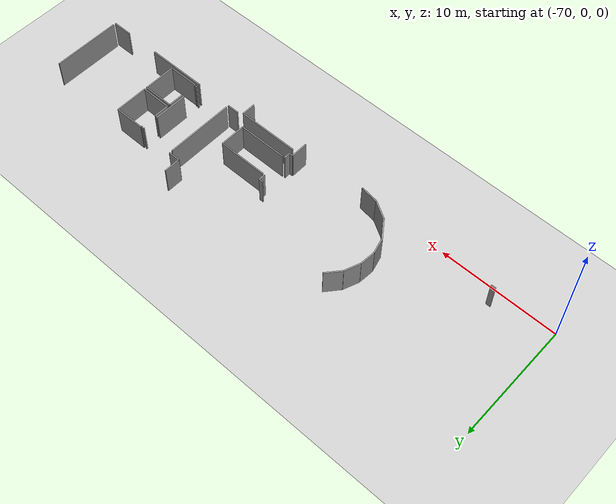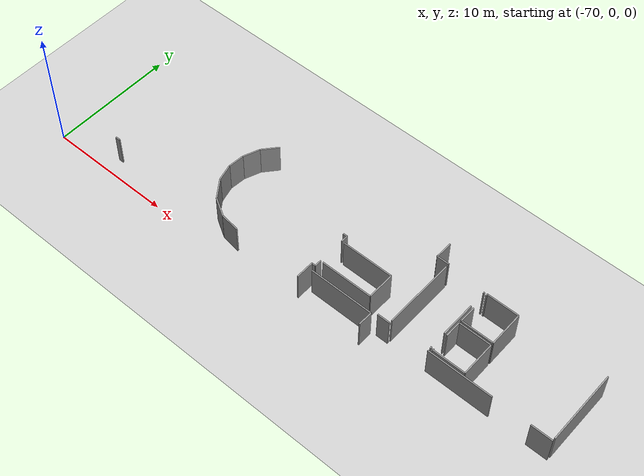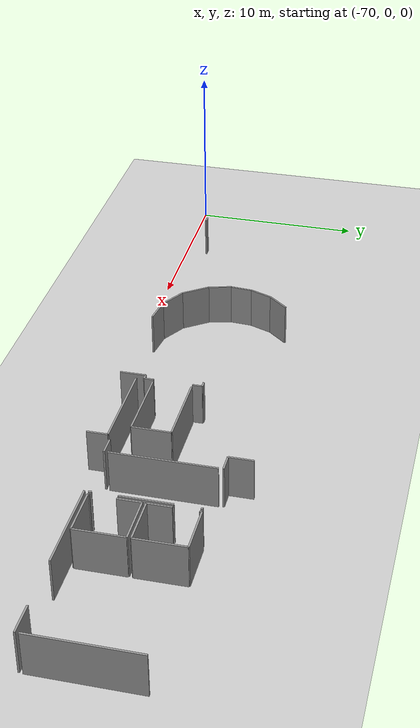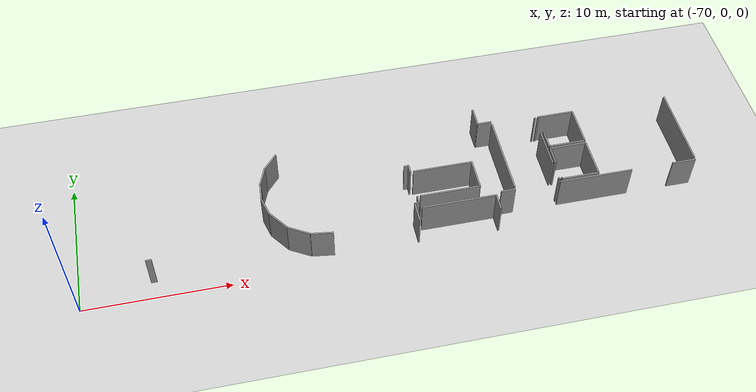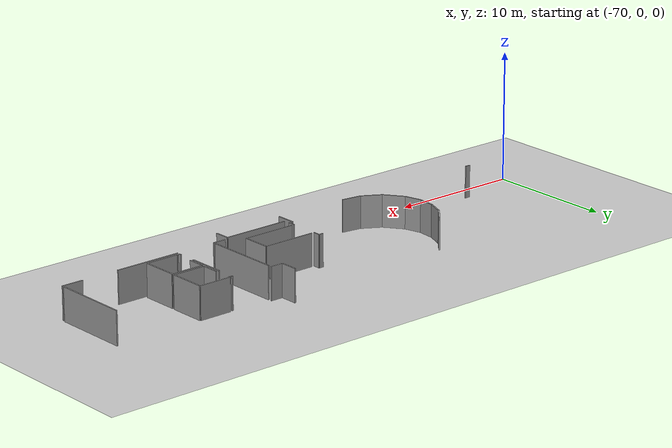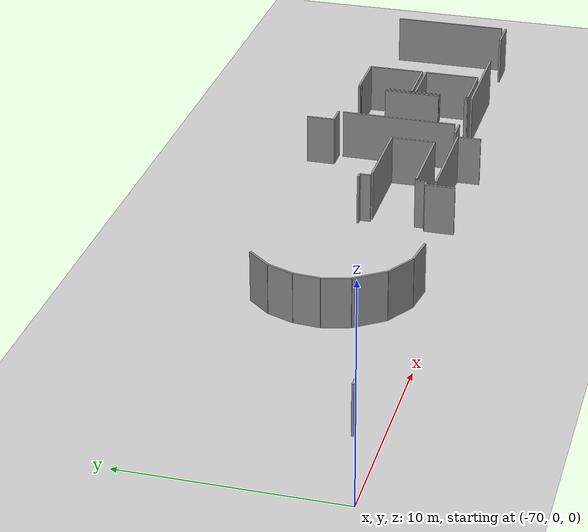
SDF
<sdf version="1.6">
 <world name="default">
  <model name="ground_plane">
   <static>1</static>
   <link name="link">
    <collision name="collision">
     <geometry><plane><normal>0 0 1</normal><size>100 100</size></plane></geometry>
     <surface><friction><ode><mu>100</mu><mu2>50</mu2></ode></friction></surface>
    </collision>
    <visual name="visual">
     <cast_shadows>0</cast_shadows>
     <geometry><plane><normal>0 0 1</normal><size>100 100</size></plane></geometry>
     <material>
      <script><uri>file://media/materials/scripts/gazebo.material</uri><name>Gazebo/Grey</name></script>
     </material>
    </visual>
   </link>
  </model>
  <model name="0510032217_A-40">
   <static>1</static>
   <link name="Wall_44">
    <collision name="Wall_44_Collision">
     <geometry><box><size>0.986701857679 0.1 2.5</size></box></geometry>
     <pose>0.49335092884 0 1.25 0 0 0</pose>
    </collision>
    <visual name="Wall_44_Visual">
     <pose>0.49335092884 0 1.25 0 0 0</pose>
     <geometry><box><size>0.986701857679 0.1 2.5</size></box></geometry>
     <material>
      <script><uri>file://media/materials/scripts/gazebo.material</uri><name>Gazebo/Grey</name></script>
      <ambient>1 1 1 1</ambient>
     </material>
    </visual>
    <pose>36.4605750685 -44.8070246675 0 0 0 3.14159265359</pose>
   </link>
   <link name="Wall_45">
    <collision name="Wall_45_Collision">
     <geometry><box><size>1.37854024972 0.1 2.5</size></box></geometry>
     <pose>0.68927012486 0 1.25 0 0 0</pose>
    </collision>
    <visual name="Wall_45_Visual">
     <pose>0.68927012486 0 1.25 0 0 0</pose>
     <geometry><box><size>1.37854024972 0.1 2.5</size></box></geometry>
     <material>
      <script><uri>file://media/materials/scripts/gazebo.material</uri><name>Gazebo/Grey</name></script>
      <ambient>1 1 1 1</ambient>
     </material>
    </visual>
    <pose>35.4738732108 -44.8070246675 0 0 0 1.57079632679</pose>
   </link>
   <link name="Wall_362">
    <collision name="Wall_362_Collision">
     <geometry><box><size>5.81147384252 0.1 2.5</size></box></geometry>
     <pose>2.90573692126 0 1.25 0 0 0</pose>
    </collision>
    <visual name="Wall_362_Visual">
     <pose>2.90573692126 0 1.25 0 0 0</pose>
     <geometry><box><size>5.81147384252 0.1 2.5</size></box></geometry>
     <material>
      <script><uri>file://media/materials/scripts/gazebo.material</uri><name>Gazebo/Grey</name></script>
      <ambient>1 1 1 1</ambient>
     </material>
    </visual>
    <pose>49.33718658 -45.0391077048 0 0 0 -1.56913690344</pose>
   </link>
   <link name="Wall_363">
    <collision name="Wall_363_Collision">
     <geometry><box><size>5.78875241092 0.1 2.5</size></box></geometry>
     <pose>2.89437620546 0 1.25 0 0 0</pose>
    </collision>
    <visual name="Wall_363_Visual">
     <pose>2.89437620546 0 1.25 0 0 0</pose>
     <geometry><box><size>5.78875241092 0.1 2.5</size></box></geometry>
     <material>
      <script><uri>file://media/materials/scripts/gazebo.material</uri><name>Gazebo/Grey</name></script>
      <ambient>1 1 1 1</ambient>
     </material>
    </visual>
    <pose>36.4547380977 -50.8424525429 0 0 0 1.57079632679</pose>
   </link>
   <link name="Wall_364">
    <collision name="Wall_364_Collision">
     <geometry><box><size>0.115978073292 0.1 2.5</size></box></geometry>
     <pose>0.057989036646 0 1.25 0 0 0</pose>
    </collision>
    <visual name="Wall_364_Visual">
     <pose>0.057989036646 0 1.25 0 0 0</pose>
     <geometry><box><size>0.115978073292 0.1 2.5</size></box></geometry>
     <material>
      <script><uri>file://media/materials/scripts/gazebo.material</uri><name>Gazebo/Grey</name></script>
      <ambient>1 1 1 1</ambient>
     </material>
    </visual>
    <pose>39.6164729469 -45.053700132 0 0 0 -1.57079632679</pose>
   </link>
   <link name="Wall_365">
    <collision name="Wall_365_Collision">
     <geometry><box><size>2.82940818191 0.1 2.5</size></box></geometry>
     <pose>1.41470409096 0 1.25 0 0 0</pose>
    </collision>
    <visual name="Wall_365_Visual">
     <pose>1.41470409096 0 1.25 0 0 0</pose>
     <geometry><box><size>2.82940818191 0.1 2.5</size></box></geometry>
     <material>
      <script><uri>file://media/materials/scripts/gazebo.material</uri><name>Gazebo/Grey</name></script>
      <ambient>1 1 1 1</ambient>
     </material>
    </visual>
    <pose>39.6164729469 -46.5046949548 0 0 0 -1.57079632679</pose>
   </link>
   <link name="Wall_366">
    <collision name="Wall_366_Collision">
     <geometry><box><size>0.167678808052 0.1 2.5</size></box></geometry>
     <pose>0.0838394040262 0 1.25 0 0 0</pose>
    </collision>
    <visual name="Wall_366_Visual">
     <pose>0.0838394040262 0 1.25 0 0 0</pose>
     <geometry><box><size>0.167678808052 0.1 2.5</size></box></geometry>
     <material>
      <script><uri>file://media/materials/scripts/gazebo.material</uri><name>Gazebo/Grey</name></script>
      <ambient>1 1 1 1</ambient>
     </material>
    </visual>
    <pose>39.6164729469 -50.6769871079 0 0 0 -1.40813582539</pose>
   </link>
   <link name="Wall_367">
    <collision name="Wall_367_Collision">
     <geometry><box><size>2.57549994924 0.1 2.5</size></box></geometry>
     <pose>1.28774997462 0 1.25 0 0 0</pose>
    </collision>
    <visual name="Wall_367_Visual">
     <pose>1.28774997462 0 1.25 0 0 0</pose>
     <geometry><box><size>2.57549994924 0.1 2.5</size></box></geometry>
     <material>
      <script><uri>file://media/materials/scripts/gazebo.material</uri><name>Gazebo/Grey</name></script>
      <ambient>1 1 1 1</ambient>
     </material>
    </visual>
    <pose>42.4169500558 -47.8395848137 0 0 0 3.14159265359</pose>
   </link>
   <link name="Wall_368">
    <collision name="Wall_368_Collision">
     <geometry><box><size>1.31319155416 0.1 2.5</size></box></geometry>
     <pose>0.656595777078 0 1.25 0 0 0</pose>
    </collision>
    <visual name="Wall_368_Visual">
     <pose>0.656595777078 0 1.25 0 0 0</pose>
     <geometry><box><size>1.31319155416 0.1 2.5</size></box></geometry>
     <material>
      <script><uri>file://media/materials/scripts/gazebo.material</uri><name>Gazebo/Grey</name></script>
      <ambient>1 1 1 1</ambient>
     </material>
    </visual>
    <pose>39.8414501066 -47.8395848137 0 0 0 1.57079632679</pose>
   </link>
   <link name="Wall_369">
    <collision name="Wall_369_Collision">
     <geometry><box><size>0.12333773221 0.1 2.5</size></box></geometry>
     <pose>0.061668866105 0 1.25 0 0 0</pose>
    </collision>
    <visual name="Wall_369_Visual">
     <pose>0.061668866105 0 1.25 0 0 0</pose>
     <geometry><box><size>0.12333773221 0.1 2.5</size></box></geometry>
     <material>
      <script><uri>file://media/materials/scripts/gazebo.material</uri><name>Gazebo/Grey</name></script>
      <ambient>1 1 1 1</ambient>
     </material>
    </visual>
    <pose>39.8414501066 -45.1770378642 0 0 0 1.57079632679</pose>
   </link>
   <link name="Wall_370">
    <collision name="Wall_370_Collision">
     <geometry><box><size>2.56103441275 0.1 2.5</size></box></geometry>
     <pose>1.28051720637 0 1.25 0 0 0</pose>
    </collision>
    <visual name="Wall_370_Visual">
     <pose>1.28051720637 0 1.25 0 0 0</pose>
     <geometry><box><size>2.56103441275 0.1 2.5</size></box></geometry>
     <material>
      <script><uri>file://media/materials/scripts/gazebo.material</uri><name>Gazebo/Grey</name></script>
      <ambient>1 1 1 1</ambient>
     </material>
    </visual>
    <pose>39.8414501066 -45.053700132 0 0 0 0.0</pose>
   </link>
   <link name="Wall_371">
    <collision name="Wall_371_Collision">
     <geometry><box><size>2.78592223721 0.1 2.5</size></box></geometry>
     <pose>1.39296111861 0 1.25 0 0 0</pose>
    </collision>
    <visual name="Wall_371_Visual">
     <pose>1.39296111861 0 1.25 0 0 0</pose>
     <geometry><box><size>2.78592223721 0.1 2.5</size></box></geometry>
     <material>
      <script><uri>file://media/materials/scripts/gazebo.material</uri><name>Gazebo/Grey</name></script>
      <ambient>1 1 1 1</ambient>
     </material>
    </visual>
    <pose>42.4024845193 -45.053700132 0 0 0 -1.56560393438</pose>
   </link>
   <link name="Wall_372">
    <collision name="Wall_372_Collision">
     <geometry><box><size>2.59034615775 0.1 2.5</size></box></geometry>
     <pose>1.29517307888 0 1.25 0 0 0</pose>
    </collision>
    <visual name="Wall_372_Visual">
     <pose>1.29517307888 0 1.25 0 0 0</pose>
     <geometry><box><size>2.59034615775 0.1 2.5</size></box></geometry>
     <material>
      <script><uri>file://media/materials/scripts/gazebo.material</uri><name>Gazebo/Grey</name></script>
      <ambient>1 1 1 1</ambient>
     </material>
    </visual>
    <pose>42.42151812 -50.8155517206 0 0 0 3.14159265359</pose>
   </link>
   <link name="Wall_373">
    <collision name="Wall_373_Collision">
     <geometry><box><size>0.104938584915 0.1 2.5</size></box></geometry>
     <pose>0.0524692924576 0 1.25 0 0 0</pose>
    </collision>
    <visual name="Wall_373_Visual">
     <pose>0.0524692924576 0 1.25 0 0 0</pose>
     <geometry><box><size>0.104938584915 0.1 2.5</size></box></geometry>
     <material>
      <script><uri>file://media/materials/scripts/gazebo.material</uri><name>Gazebo/Grey</name></script>
      <ambient>1 1 1 1</ambient>
     </material>
    </visual>
    <pose>39.8311719622 -50.8155517206 0 0 0 1.57079632679</pose>
   </link>
   <link name="Wall_374">
    <collision name="Wall_374_Collision">
     <geometry><box><size>1.30227895645 0.1 2.5</size></box></geometry>
     <pose>0.651139478226 0 1.25 0 0 0</pose>
    </collision>
    <visual name="Wall_374_Visual">
     <pose>0.651139478226 0 1.25 0 0 0</pose>
     <geometry><box><size>1.30227895645 0.1 2.5</size></box></geometry>
     <material>
      <script><uri>file://media/materials/scripts/gazebo.material</uri><name>Gazebo/Grey</name></script>
      <ambient>1 1 1 1</ambient>
     </material>
    </visual>
    <pose>39.8311719622 -49.3559283321 0 0 0 1.57079632679</pose>
   </link>
   <link name="Wall_375">
    <collision name="Wall_375_Collision">
     <geometry><box><size>2.57600751193 0.1 2.5</size></box></geometry>
     <pose>1.28800375596 0 1.25 0 0 0</pose>
    </collision>
    <visual name="Wall_375_Visual">
     <pose>1.28800375596 0 1.25 0 0 0</pose>
     <geometry><box><size>2.57600751193 0.1 2.5</size></box></geometry>
     <material>
      <script><uri>file://media/materials/scripts/gazebo.material</uri><name>Gazebo/Grey</name></script>
      <ambient>1 1 1 1</ambient>
     </material>
    </visual>
    <pose>39.8311719622 -48.0536493757 0 0 0 0.0</pose>
   </link>
   <link name="Wall_376">
    <collision name="Wall_376_Collision">
     <geometry><box><size>2.76193956483 0.1 2.5</size></box></geometry>
     <pose>1.38096978241 0 1.25 0 0 0</pose>
    </collision>
    <visual name="Wall_376_Visual">
     <pose>1.38096978241 0 1.25 0 0 0</pose>
     <geometry><box><size>2.76193956483 0.1 2.5</size></box></geometry>
     <material>
      <script><uri>file://media/materials/scripts/gazebo.material</uri><name>Gazebo/Grey</name></script>
      <ambient>1 1 1 1</ambient>
     </material>
    </visual>
    <pose>42.4071794742 -48.0536493757 0 0 0 -1.56560479023</pose>
   </link>
   <link name="Wall_380">
    <collision name="Wall_380_Collision">
     <geometry><box><size>1.53276275442 0.1 2.5</size></box></geometry>
     <pose>0.766381377212 0 1.25 0 0 0</pose>
    </collision>
    <visual name="Wall_380_Visual">
     <pose>0.766381377212 0 1.25 0 0 0</pose>
     <geometry><box><size>1.53276275442 0.1 2.5</size></box></geometry>
     <material>
      <script><uri>file://media/materials/scripts/gazebo.material</uri><name>Gazebo/Grey</name></script>
      <ambient>1 1 1 1</ambient>
     </material>
    </visual>
    <pose>23.7704928434 -52.0953710283 0 0 0 3.00506943648</pose>
   </link>
   <link name="Wall_381">
    <collision name="Wall_381_Collision">
     <geometry><box><size>1.62688091041 0.1 2.5</size></box></geometry>
     <pose>0.813440455203 0 1.25 0 0 0</pose>
    </collision>
    <visual name="Wall_381_Visual">
     <pose>0.813440455203 0 1.25 0 0 0</pose>
     <geometry><box><size>1.62688091041 0.1 2.5</size></box></geometry>
     <material>
      <script><uri>file://media/materials/scripts/gazebo.material</uri><name>Gazebo/Grey</name></script>
      <ambient>1 1 1 1</ambient>
     </material>
    </visual>
    <pose>22.2519921835 -51.8867627652 0 0 0 2.60910535449</pose>
   </link>
   <link name="Wall_382">
    <collision name="Wall_382_Collision">
     <geometry><box><size>1.70897439656 0.1 2.5</size></box></geometry>
     <pose>0.854487198282 0 1.25 0 0 0</pose>
    </collision>
    <visual name="Wall_382_Visual">
     <pose>0.854487198282 0 1.25 0 0 0</pose>
     <geometry><box><size>1.70897439656 0.1 2.5</size></box></geometry>
     <material>
      <script><uri>file://media/materials/scripts/gazebo.material</uri><name>Gazebo/Grey</name></script>
      <ambient>1 1 1 1</ambient>
     </material>
    </visual>
    <pose>20.8503578317 -51.0608313877 0 0 0 2.19669937129</pose>
   </link>
   <link name="Wall_383">
    <collision name="Wall_383_Collision">
     <geometry><box><size>1.34572605802 0.1 2.5</size></box></geometry>
     <pose>0.67286302901 0 1.25 0 0 0</pose>
    </collision>
    <visual name="Wall_383_Visual">
     <pose>0.67286302901 0 1.25 0 0 0</pose>
     <geometry><box><size>1.34572605802 0.1 2.5</size></box></geometry>
     <material>
      <script><uri>file://media/materials/scripts/gazebo.material</uri><name>Gazebo/Grey</name></script>
      <ambient>1 1 1 1</ambient>
     </material>
    </visual>
    <pose>19.8491904375 -49.6758197137 0 0 0 1.82782728346</pose>
   </link>
   <link name="Wall_384">
    <collision name="Wall_384_Collision">
     <geometry><box><size>1.28878949184 0.1 2.5</size></box></geometry>
     <pose>0.64439474592 0 1.25 0 0 0</pose>
    </collision>
    <visual name="Wall_384_Visual">
     <pose>0.64439474592 0 1.25 0 0 0</pose>
     <geometry><box><size>1.28878949184 0.1 2.5</size></box></geometry>
     <material>
      <script><uri>file://media/materials/scripts/gazebo.material</uri><name>Gazebo/Grey</name></script>
      <ambient>1 1 1 1</ambient>
     </material>
    </visual>
    <pose>19.5070931885 -48.3743021013 0 0 0 1.4930352116</pose>
   </link>
   <link name="Wall_385">
    <collision name="Wall_385_Collision">
     <geometry><box><size>1.36812766502 0.1 2.5</size></box></geometry>
     <pose>0.684063832512 0 1.25 0 0 0</pose>
    </collision>
    <visual name="Wall_385_Visual">
     <pose>0.684063832512 0 1.25 0 0 0</pose>
     <geometry><box><size>1.36812766502 0.1 2.5</size></box></geometry>
     <material>
      <script><uri>file://media/materials/scripts/gazebo.material</uri><name>Gazebo/Grey</name></script>
      <ambient>1 1 1 1</ambient>
     </material>
    </visual>
    <pose>19.6072099279 -47.0894071668 0 0 0 1.20277681314</pose>
   </link>
   <link name="Wall_386">
    <collision name="Wall_386_Collision">
     <geometry><box><size>1.44428975668 0.1 2.5</size></box></geometry>
     <pose>0.722144878338 0 1.25 0 0 0</pose>
    </collision>
    <visual name="Wall_386_Visual">
     <pose>0.722144878338 0 1.25 0 0 0</pose>
     <geometry><box><size>1.44428975668 0.1 2.5</size></box></geometry>
     <material>
      <script><uri>file://media/materials/scripts/gazebo.material</uri><name>Gazebo/Grey</name></script>
      <ambient>1 1 1 1</ambient>
     </material>
    </visual>
    <pose>20.0994188407 -45.8128870165 0 0 0 0.867182544015</pose>
   </link>
   <link name="Wall_393">
    <collision name="Wall_393_Collision">
     <geometry><box><size>0.341589686326 0.1 2.5</size></box></geometry>
     <pose>0.170794843163 0 1.25 0 0 0</pose>
    </collision>
    <visual name="Wall_393_Visual">
     <pose>0.170794843163 0 1.25 0 0 0</pose>
     <geometry><box><size>0.341589686326 0.1 2.5</size></box></geometry>
     <material>
      <script><uri>file://media/materials/scripts/gazebo.material</uri><name>Gazebo/Grey</name></script>
      <ambient>1 1 1 1</ambient>
     </material>
    </visual>
    <pose>29.4856486651 -47.5632169323 0 0 0 0.0</pose>
   </link>
   <link name="Wall_394">
    <collision name="Wall_394_Collision">
     <geometry><box><size>0.555146685616 0.1 2.5</size></box></geometry>
     <pose>0.277573342808 0 1.25 0 0 0</pose>
    </collision>
    <visual name="Wall_394_Visual">
     <pose>0.277573342808 0 1.25 0 0 0</pose>
     <geometry><box><size>0.555146685616 0.1 2.5</size></box></geometry>
     <material>
      <script><uri>file://media/materials/scripts/gazebo.material</uri><name>Gazebo/Grey</name></script>
      <ambient>1 1 1 1</ambient>
     </material>
    </visual>
    <pose>29.8272383514 -47.5632169323 0 0 0 -1.57079632679</pose>
   </link>
   <link name="Wall_395">
    <collision name="Wall_395_Collision">
     <geometry><box><size>0.550959293473 0.1 2.5</size></box></geometry>
     <pose>0.275479646736 0 1.25 0 0 0</pose>
    </collision>
    <visual name="Wall_395_Visual">
     <pose>0.275479646736 0 1.25 0 0 0</pose>
     <geometry><box><size>0.550959293473 0.1 2.5</size></box></geometry>
     <material>
      <script><uri>file://media/materials/scripts/gazebo.material</uri><name>Gazebo/Grey</name></script>
      <ambient>1 1 1 1</ambient>
     </material>
    </visual>
    <pose>29.8272383514 -50.2845142625 0 0 0 -1.57079632679</pose>
   </link>
   <link name="Wall_396">
    <collision name="Wall_396_Collision">
     <geometry><box><size>0.309105674551 0.1 2.5</size></box></geometry>
     <pose>0.154552837275 0 1.25 0 0 0</pose>
    </collision>
    <visual name="Wall_396_Visual">
     <pose>0.154552837275 0 1.25 0 0 0</pose>
     <geometry><box><size>0.309105674551 0.1 2.5</size></box></geometry>
     <material>
      <script><uri>file://media/materials/scripts/gazebo.material</uri><name>Gazebo/Grey</name></script>
      <ambient>1 1 1 1</ambient>
     </material>
    </visual>
    <pose>29.8272383514 -50.835473556 0 0 0 3.14159265359</pose>
   </link>
   <link name="Wall_397">
    <collision name="Wall_397_Collision">
     <geometry><box><size>1.45139107601 0.1 2.5</size></box></geometry>
     <pose>0.725695538003 0 1.25 0 0 0</pose>
    </collision>
    <visual name="Wall_397_Visual">
     <pose>0.725695538003 0 1.25 0 0 0</pose>
     <geometry><box><size>1.45139107601 0.1 2.5</size></box></geometry>
     <material>
      <script><uri>file://media/materials/scripts/gazebo.material</uri><name>Gazebo/Grey</name></script>
      <ambient>1 1 1 1</ambient>
     </material>
    </visual>
    <pose>29.5181326769 -50.835473556 0 0 0 -1.56616268274</pose>
   </link>
   <link name="Wall_398">
    <collision name="Wall_398_Collision">
     <geometry><box><size>4.14272662674 0.1 2.5</size></box></geometry>
     <pose>2.07136331337 0 1.25 0 0 0</pose>
    </collision>
    <visual name="Wall_398_Visual">
     <pose>2.07136331337 0 1.25 0 0 0</pose>
     <geometry><box><size>4.14272662674 0.1 2.5</size></box></geometry>
     <material>
      <script><uri>file://media/materials/scripts/gazebo.material</uri><name>Gazebo/Grey</name></script>
      <ambient>1 1 1 1</ambient>
     </material>
    </visual>
    <pose>34.1707060197 -50.2907319054 0 0 0 3.14159265359</pose>
   </link>
   <link name="Wall_399">
    <collision name="Wall_399_Collision">
     <geometry><box><size>4.13968125063 0.1 2.5</size></box></geometry>
     <pose>2.06984062532 0 1.25 0 0 0</pose>
    </collision>
    <visual name="Wall_399_Visual">
     <pose>2.06984062532 0 1.25 0 0 0</pose>
     <geometry><box><size>4.13968125063 0.1 2.5</size></box></geometry>
     <material>
      <script><uri>file://media/materials/scripts/gazebo.material</uri><name>Gazebo/Grey</name></script>
      <ambient>1 1 1 1</ambient>
     </material>
    </visual>
    <pose>30.027979393 -48.1183636179 0 0 0 0.0</pose>
   </link>
   <link name="Wall_400">
    <collision name="Wall_400_Collision">
     <geometry><box><size>2.17237042209 0.1 2.5</size></box></geometry>
     <pose>1.08618521105 0 1.25 0 0 0</pose>
    </collision>
    <visual name="Wall_400_Visual">
     <pose>1.08618521105 0 1.25 0 0 0</pose>
     <geometry><box><size>2.17237042209 0.1 2.5</size></box></geometry>
     <material>
      <script><uri>file://media/materials/scripts/gazebo.material</uri><name>Gazebo/Grey</name></script>
      <ambient>1 1 1 1</ambient>
     </material>
    </visual>
    <pose>34.1676606436 -48.1183636179 0 0 0 -1.56939445855</pose>
   </link>
   <link name="Wall_404">
    <collision name="Wall_404_Collision">
     <geometry><box><size>0.400466957669 0.1 2.5</size></box></geometry>
     <pose>0.200233478835 0 1.25 0 0 0</pose>
    </collision>
    <visual name="Wall_404_Visual">
     <pose>0.200233478835 0 1.25 0 0 0</pose>
     <geometry><box><size>0.400466957669 0.1 2.5</size></box></geometry>
     <material>
      <script><uri>file://media/materials/scripts/gazebo.material</uri><name>Gazebo/Grey</name></script>
      <ambient>1 1 1 1</ambient>
     </material>
    </visual>
    <pose>11.8987285555 -51.83093087 0 0 0 3.14159265359</pose>
   </link>
   <link name="Wall_471">
    <collision name="Wall_471_Collision">
     <geometry><box><size>1.00116739417 0.1 2.5</size></box></geometry>
     <pose>0.500583697087 0 1.25 0 0 0</pose>
    </collision>
    <visual name="Wall_471_Visual">
     <pose>0.500583697087 0 1.25 0 0 0</pose>
     <geometry><box><size>1.00116739417 0.1 2.5</size></box></geometry>
     <material>
      <script><uri>file://media/materials/scripts/gazebo.material</uri><name>Gazebo/Grey</name></script>
      <ambient>1 1 1 1</ambient>
     </material>
    </visual>
    <pose>35.4521749061 -51.0535986194 0 0 0 0.0</pose>
   </link>
   <link name="Wall_472">
    <collision name="Wall_472_Collision">
     <geometry><box><size>5.12283016953 0.1 2.5</size></box></geometry>
     <pose>2.56141508476 0 1.25 0 0 0</pose>
    </collision>
    <visual name="Wall_472_Visual">
     <pose>2.56141508476 0 1.25 0 0 0</pose>
     <geometry><box><size>5.12283016953 0.1 2.5</size></box></geometry>
     <material>
      <script><uri>file://media/materials/scripts/gazebo.material</uri><name>Gazebo/Grey</name></script>
      <ambient>1 1 1 1</ambient>
     </material>
    </visual>
    <pose>39.6143158055 -51.0535986194 0 0 0 0.0</pose>
   </link>
   <link name="Wall_473">
    <collision name="Wall_473_Collision">
     <geometry><box><size>1.66950055832 0.1 2.5</size></box></geometry>
     <pose>0.834750279159 0 1.25 0 0 0</pose>
    </collision>
    <visual name="Wall_473_Visual">
     <pose>0.834750279159 0 1.25 0 0 0</pose>
     <geometry><box><size>1.66950055832 0.1 2.5</size></box></geometry>
     <material>
      <script><uri>file://media/materials/scripts/gazebo.material</uri><name>Gazebo/Grey</name></script>
      <ambient>1 1 1 1</ambient>
     </material>
    </visual>
    <pose>47.686846513 -51.0535986194 0 0 0 0.0</pose>
   </link>
   <link name="Wall_525">
    <collision name="Wall_525_Collision">
     <geometry><box><size>5.13653436199 0.1 2.5</size></box></geometry>
     <pose>2.568267181 0 1.25 0 0 0</pose>
    </collision>
    <visual name="Wall_525_Visual">
     <pose>2.568267181 0 1.25 0 0 0</pose>
     <geometry><box><size>5.13653436199 0.1 2.5</size></box></geometry>
     <material>
      <script><uri>file://media/materials/scripts/gazebo.material</uri><name>Gazebo/Grey</name></script>
      <ambient>1 1 1 1</ambient>
     </material>
    </visual>
    <pose>29.9165693838 -51.2712161202 0 0 0 0.0</pose>
   </link>
   <link name="Wall_526">
    <collision name="Wall_526_Collision">
     <geometry><box><size>1.16867013394 0.1 2.5</size></box></geometry>
     <pose>0.584335066972 0 1.25 0 0 0</pose>
    </collision>
    <visual name="Wall_526_Visual">
     <pose>0.584335066972 0 1.25 0 0 0</pose>
     <geometry><box><size>1.16867013394 0.1 2.5</size></box></geometry>
     <material>
      <script><uri>file://media/materials/scripts/gazebo.material</uri><name>Gazebo/Grey</name></script>
      <ambient>1 1 1 1</ambient>
     </material>
    </visual>
    <pose>35.0531037458 -51.2712161202 0 0 0 -1.56732185652</pose>
   </link>
   <pose>-76.8 53.1213480865 0 0 0 0</pose>
  </model>
 </world>
</sdf>
